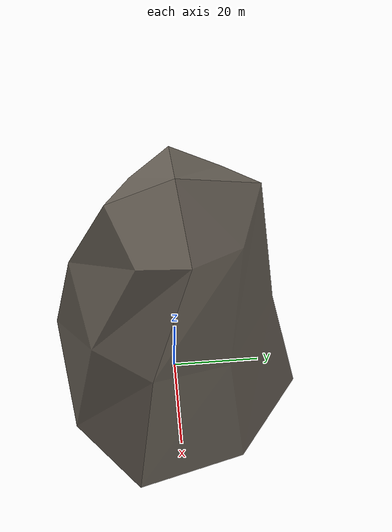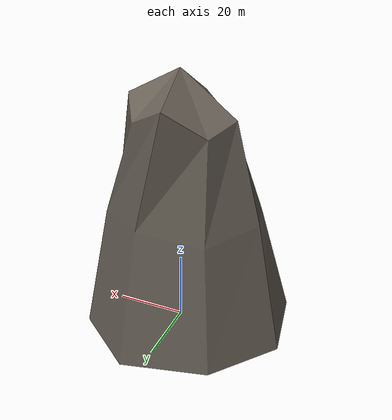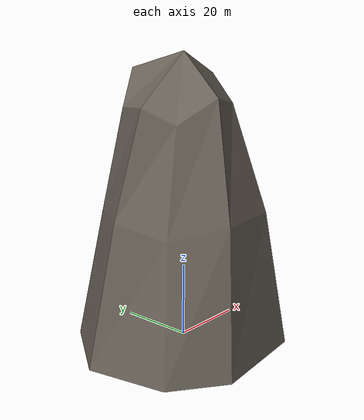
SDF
<?xml version="1.0"?>
<sdf version="1.9">
  <model name="rock_demo_spire">
    <static>true</static>
    <pose>0 0 0 0 0 0</pose>
    <link name="rock_demo_spire_link">
      <pose>0 0 0 0 0 0</pose>
      <collision name="rock_demo_spire_collision">
        <geometry>
          <mesh>
            <uri>model://rock_demo_spire/meshes/rock_demo_spire.obj</uri>
            <scale>1 1 1</scale>
          </mesh>
        </geometry>
      </collision>
      <visual name="rock_demo_spire_visual">
        <geometry>
          <mesh>
            <uri>model://rock_demo_spire/meshes/rock_demo_spire.obj</uri>
            <scale>1 1 1</scale>
          </mesh>
        </geometry>
        <material>
          <ambient>0.26 0.24 0.22 1</ambient>
          <diffuse>0.42 0.39 0.35 1</diffuse>
          <specular>0.08 0.08 0.07 1</specular>
        </material>
      </visual>
    </link>
  </model>
</sdf>
